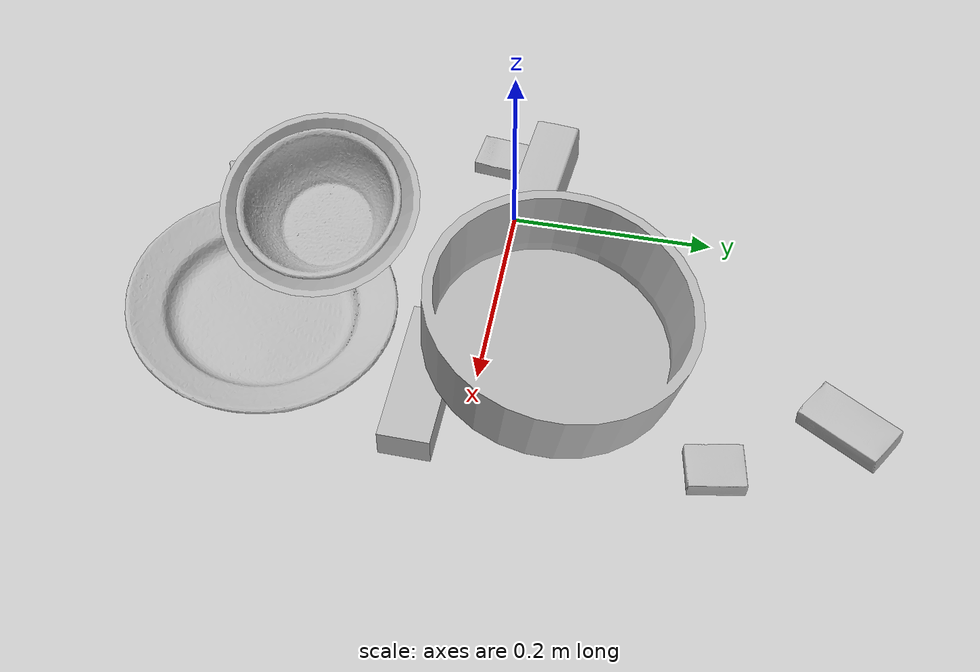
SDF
<sdf version="1.4">
  <world name="default">
    <light name="light1" type="point">
      <pose>0 0 1 0 0 0</pose>
      <diffuse>3 3 3 1</diffuse>
      <specular>3 3 3 1</specular>
    </light>
    <light name="light2" type="point">
      <pose>0 0.5 2 0 0 0</pose>
      <diffuse>1 1 1 1</diffuse>
      <specular>1 1 1 1</specular>
    </light>
    <light name="light3" type="point">
      <pose>0 0.5 2 0 0 0</pose>
      <diffuse>3 3 3 1</diffuse>
      <specular>3 3 3 1</specular>
    </light>
    <scene>
      <ambient>0.7 0.7 0.7</ambient>
    </scene>
    <model name="box1">
      <link name="link_box1">
        <collision name="default">
          <geometry>
            <mesh>
              <uri>model://jenga/collision_meshes/collision.obj</uri>
              <scale>1.0 1.0 1.0</scale>
            </mesh>
          </geometry>
          <surface>
            <friction>
              <ode>
                <mu>0.5</mu>
                <mu2>0.5</mu2>
              </ode>
            </friction>
          <contact>
        <ode>
            <max_vel>0</max_vel>
            <min_depth>0.0001</min_depth>
            <kp>1e8</kp>
        </ode>
    </contact></surface>
        </collision>
        <visual name="default">
          <geometry>
            <mesh>
              <uri>model://jenga/visual_meshes/visual.dae</uri>
              <scale>1.0 1.0 1.0</scale>
            </mesh>
          </geometry>
        </visual>
        <inertial>
          <mass>0.22956150770187378</mass>
          <pose>-2.502855807051674e-07 -0.00010250010382151231 -4.0923401684267446e-05 0.0 -7.34215461761844e-07 0.0</pose>
          <inertia>
            <ixx>6.3525236e-05</ixx>
            <iyy>0.00043044525</iyy>
            <izz>0.0004595369</izz>
            <ixy>0</ixy>
            <ixz>0</ixz>
            <iyz>0</iyz>
          </inertia>
        </inertial>
      </link>
      <pose>0.22569029033184052 -0.04743558168411255 0.014999778009951115 -2.5305509260337143e-05 1.2501530752671049e-05 3.1207744515261817</pose>
    </model>
    <model name="box11">
      <link name="link_box11">
        <collision name="default">
          <geometry>
            <mesh>
              <uri>model://gelatin_box/collision_meshes/collision.obj</uri>
              <scale>1.0 1.0 1.0</scale>
            </mesh>
          </geometry>
          <surface>
            <friction>
              <ode>
                <mu>0.5</mu>
                <mu2>0.5</mu2>
              </ode>
            </friction>
          <contact>
        <ode>
            <max_vel>0</max_vel>
            <min_depth>0.0001</min_depth>
            <kp>1e8</kp>
        </ode>
    </contact></surface>
        </collision>
        <visual name="default">
          <geometry>
            <mesh>
              <uri>model://gelatin_box/visual_meshes/visual.dae</uri>
              <scale>1.0 1.0 1.0</scale>
            </mesh>
          </geometry>
        </visual>
        <inertial>
          <mass>0.23979201912879944</mass>
          <pose>0.00043196187471039593 0.00011156872642459348 -0.0003640321083366871 -0.0010503717361155602 -0.00475581776093882 0.016440559470502904</pose>
          <inertia>
            <ixx>0.00016927361</ixx>
            <iyy>0.000120911245</iyy>
            <izz>0.00025767216</izz>
            <ixy>0</ixy>
            <ixz>0</ixz>
            <iyz>0</iyz>
          </inertia>
        </inertial>
      </link>
      <pose>0.021354271098971367 -0.24590064585208893 0.015432355925440788 -0.006845118190067414 0.013100636155772897 0.2786583625307552</pose>
    </model>
    <model name="box2">
      <link name="link_box2">
        <collision name="default">
          <geometry>
            <mesh>
              <uri>model://wood_block/collision_meshes/collision.obj</uri>
              <scale>0.5 0.5 0.5</scale>
            </mesh>
          </geometry>
          <surface>
            <friction>
              <ode>
                <mu>0.5</mu>
                <mu2>0.5</mu2>
              </ode>
            </friction>
          <contact>
        <ode>
            <max_vel>0</max_vel>
            <min_depth>0.0001</min_depth>
            <kp>1e8</kp>
        </ode>
    </contact></surface>
        </collision>
        <visual name="default">
          <geometry>
            <mesh>
              <uri>model://wood_block/visual_meshes/visual.dae</uri>
              <scale>0.5 0.5 0.5</scale>
            </mesh>
          </geometry>
        </visual>
        <inertial>
          <mass>0.1620619148015976</mass>
          <pose>-2.9066577553749084e-06 -0.000285404734313488 0.00013204291462898254 -0.05221116986778199 -0.0051926948812571205 -0.006861377876233232</pose>
          <inertia>
            <ixx>5.421584e-05</ixx>
            <iyy>0.00017126785</iyy>
            <izz>0.00017062723</izz>
            <ixy>0</ixy>
            <ixz>0</ixz>
            <iyz>0</iyz>
          </inertia>
        </inertial>
      </link>
      <pose>-0.046628188341856 0.023641396313905716 0.0226292721927166 -0.005208453628440705 0.005718779025222092 3.0517597531839247</pose>
    </model>
    <model name="box21">
      <link name="link_box21">
        <collision name="default">
          <geometry>
            <mesh>
              <uri>model://cracker_box/collision_meshes/collision.obj</uri>
              <scale>0.25 0.25 0.25</scale>
            </mesh>
          </geometry>
          <surface>
            <friction>
              <ode>
                <mu>0.5</mu>
                <mu2>0.5</mu2>
              </ode>
            </friction>
          <contact>
        <ode>
            <max_vel>0</max_vel>
            <min_depth>0.0001</min_depth>
            <kp>1e8</kp>
        </ode>
    </contact></surface>
        </collision>
        <visual name="default">
          <geometry>
            <mesh>
              <uri>model://cracker_box/visual_meshes/visual.dae</uri>
              <scale>0.25 0.25 0.25</scale>
            </mesh>
          </geometry>
        </visual>
        <inertial>
          <mass>0.053346797823905945</mass>
          <pose>0.0002366035187151283 6.358561950037256e-05 -0.00042573839891701937 -0.0003162075101960104 -0.011106487737771283 0.002546795233856971</pose>
          <inertia>
            <ixx>8.4806525e-06</ixx>
            <iyy>1.40032225e-05</iyy>
            <izz>1.9983887e-05</izz>
            <ixy>0</ixy>
            <ixz>0</ixz>
            <iyz>0</iyz>
          </inertia>
        </inertial>
      </link>
      <pose>-0.07256141304969788 -0.02346501685678959 0.009096027351915836 -0.014050988415739051 -0.005016062097905104 1.4430437398028497</pose>
    </model>
    <model name="box3">
      <link name="link_box3">
        <collision name="default">
          <geometry>
            <mesh>
              <uri>model://pudding_box/collision_meshes/collision.obj</uri>
              <scale>0.5 0.5 0.5</scale>
            </mesh>
          </geometry>
          <surface>
            <friction>
              <ode>
                <mu>0.5</mu>
                <mu2>0.5</mu2>
              </ode>
            </friction>
          <contact>
        <ode>
            <max_vel>0</max_vel>
            <min_depth>0.0001</min_depth>
            <kp>1e8</kp>
        </ode>
    </contact></surface>
        </collision>
        <visual name="default">
          <geometry>
            <mesh>
              <uri>model://pudding_box/visual_meshes/visual.dae</uri>
              <scale>0.5 0.5 0.5</scale>
            </mesh>
          </geometry>
        </visual>
        <inertial>
          <mass>0.03981568291783333</mass>
          <pose>0.00024474109522998333 0.00040339428232982755 -0.00025944141088984907 0.005213101343760943 -0.0066037982384193495 0.020079821436446477</pose>
          <inertia>
            <ixx>1.1252395e-05</ixx>
            <iyy>7.5706907e-06</iyy>
            <izz>1.6617103e-05</izz>
            <ixy>0</ixy>
            <ixz>0</ixz>
            <iyz>0</iyz>
          </inertia>
        </inertial>
      </link>
      <pose>0.26872098445892334 0.23364029824733734 0.009862903505563736 0.022348571350496206 -0.011391656211314646 -2.942079755309743</pose>
    </model>
    <model name="box31">
      <link name="link_box31">
        <collision name="default">
          <geometry>
            <mesh>
              <uri>model://sugar_box/collision_meshes/collision.obj</uri>
              <scale>0.5 0.5 0.5</scale>
            </mesh>
          </geometry>
          <surface>
            <friction>
              <ode>
                <mu>0.5</mu>
                <mu2>0.5</mu2>
              </ode>
            </friction>
          <contact>
        <ode>
            <max_vel>0</max_vel>
            <min_depth>0.0001</min_depth>
            <kp>1e8</kp>
        </ode>
    </contact></surface>
        </collision>
        <visual name="default">
          <geometry>
            <mesh>
              <uri>model://sugar_box/visual_meshes/visual.dae</uri>
              <scale>0.5 0.5 0.5</scale>
            </mesh>
          </geometry>
        </visual>
        <inertial>
          <mass>0.09878891706466675</mass>
          <pose>0.0005171863595023751 1.924554817378521e-05 -0.00018182402709499002 -0.0004046259508743568 0.001050663638168667 0.0026153790219137513</pose>
          <inertia>
            <ixx>2.0577656e-05</ixx>
            <iyy>6.651122e-05</iyy>
            <izz>7.9621874e-05</izz>
            <ixy>0</ixy>
            <ixz>0</ixz>
            <iyz>0</iyz>
          </inertia>
        </inertial>
      </link>
      <pose>0.19974662363529205 0.35006746649742126 0.011399304494261742 0.0007752918099122593 -0.023433221063925223 1.022078804877161</pose>
    </model>
    <model name="plate1">
      <link name="link_plate1">
        <collision name="default">
          <geometry>
            <mesh>
              <uri>model://pan_tefal/collision_meshes/collision.obj</uri>
              <scale>1.0 1.0 1.0</scale>
            </mesh>
          </geometry>
          <surface>
            <friction>
              <ode>
                <mu>0.5</mu>
                <mu2>0.5</mu2>
              </ode>
            </friction>
          <contact>
        <ode>
            <max_vel>0</max_vel>
            <min_depth>0.0001</min_depth>
            <kp>1e8</kp>
        </ode>
    </contact></surface>
        </collision>
        <visual name="default">
          <geometry>
            <mesh>
              <uri>model://pan_tefal/visual_meshes/visual.dae</uri>
              <scale>1.0 1.0 1.0</scale>
            </mesh>
          </geometry>
        </visual>
        <inertial>
          <mass>1.1273940801620483</mass>
          <pose>-0.00018001534044742584 3.279306838521734e-05 -0.00851493701338768 0.0008190361817388816 -0.00033014848142065665 -0.3318599615030245</pose>
          <inertia>
            <ixx>0.007782347</ixx>
            <iyy>0.00783252</iyy>
            <izz>0.014325799</izz>
            <ixy>0</ixy>
            <ixz>0</ixz>
            <iyz>0</iyz>
          </inertia>
        </inertial>
      </link>
      <pose>0.16658629477024078 0.07063443213701248 0.05483993515372276 0.14620951145897104 1.681988722302556e-05 3.10933725976693</pose>
    </model>
    <model name="bowl1">
      <link name="link_bowl1">
        <collision name="default">
          <geometry>
            <mesh>
              <uri>model://bowl_a/collision_meshes/collision.obj</uri>
              <scale>1.0 1.0 1.0</scale>
            </mesh>
          </geometry>
          <surface>
            <friction>
              <ode>
                <mu>0.5</mu>
                <mu2>0.5</mu2>
              </ode>
            </friction>
          <contact>
        <ode>
            <max_vel>0</max_vel>
            <min_depth>0.0001</min_depth>
            <kp>1e8</kp>
        </ode>
    </contact></surface>
        </collision>
        <visual name="default">
          <geometry>
            <mesh>
              <uri>model://bowl_a/visual_meshes/visual.dae</uri>
              <scale>1.0 1.0 1.0</scale>
            </mesh>
          </geometry>
        </visual>
        <inertial>
          <mass>0.3873887062072754</mass>
          <pose>0.00027867493918165565 4.731054286821745e-05 -0.0013765293406322598 -0.0009805472575270138 -0.0010938146264646796 -0.19122952428204854</pose>
          <inertia>
            <ixx>0.0011029133</ixx>
            <iyy>0.0011096848</iyy>
            <izz>0.001961574</izz>
            <ixy>0</ixy>
            <ixz>0</ixz>
            <iyz>0</iyz>
          </inertia>
        </inertial>
      </link>
      <pose>0.07904928922653198 -0.17465467751026154 0.05898274853825569 -0.13834777189792083 -0.25261713444219097 -2.7673513729787422</pose>
    </model>
    <model name="plate2">
      <link name="link_plate2">
        <collision name="default">
          <geometry>
            <mesh>
              <uri>model://plate/collision_meshes/collision.obj</uri>
              <scale>1.0 1.0 1.0</scale>
            </mesh>
          </geometry>
          <surface>
            <friction>
              <ode>
                <mu>0.5</mu>
                <mu2>0.5</mu2>
              </ode>
            </friction>
          <contact>
        <ode>
            <max_vel>0</max_vel>
            <min_depth>0.0001</min_depth>
            <kp>1e8</kp>
        </ode>
    </contact></surface>
        </collision>
        <visual name="default">
          <geometry>
            <mesh>
              <uri>model://plate/visual_meshes/visual.dae</uri>
              <scale>1.0 1.0 1.0</scale>
            </mesh>
          </geometry>
        </visual>
        <inertial>
          <mass>0.13866961002349854</mass>
          <pose>-0.0006044620531611145 0.0002782586379908025 -0.0010561972158029675 0.0022187857877866432 -0.0032254843385796767 0.452609315183835</pose>
          <inertia>
            <ixx>0.0006486992</ixx>
            <iyy>0.0006424946</iyy>
            <izz>0.0012687586</izz>
            <ixy>0</ixy>
            <ixz>0</ixz>
            <iyz>0</iyz>
          </inertia>
        </inertial>
      </link>
      <pose>0.16929708421230316 -0.21696795523166656 0.019456183537840843 -0.054699178941312356 0.048906565237479105 0.5379033280587457</pose>
    </model>
    <model name="bowl2">
      <link name="link_bowl2">
        <collision name="default">
          <geometry>
            <mesh>
              <uri>model://bowl/collision_meshes/collision.obj</uri>
              <scale>1.0 1.0 1.0</scale>
            </mesh>
          </geometry>
          <surface>
            <friction>
              <ode>
                <mu>0.5</mu>
                <mu2>0.5</mu2>
              </ode>
            </friction>
          <contact>
        <ode>
            <max_vel>0</max_vel>
            <min_depth>0.0001</min_depth>
            <kp>1e8</kp>
        </ode>
    </contact></surface>
        </collision>
        <visual name="default">
          <geometry>
            <mesh>
              <uri>model://bowl/visual_meshes/visual.dae</uri>
              <scale>1.0 1.0 1.0</scale>
            </mesh>
          </geometry>
        </visual>
        <inertial>
          <mass>0.04854629561305046</mass>
          <pose>0.00020445325935725123 -0.0010302069131284952 -0.0008042645058594644 -0.015764106240563104 0.014546770392749554 0.7140394241749954</pose>
          <inertia>
            <ixx>0.00011151466</ixx>
            <iyy>0.00010902299</iyy>
            <izz>0.00018760598</izz>
            <ixy>0</ixy>
            <ixz>0</ixz>
            <iyz>0</iyz>
          </inertia>
        </inertial>
      </link>
      <pose>0.08242745697498322 -0.17518408596515656 0.06698542833328247 0.2874126794488784 -0.007855960165687747 1.4670790163255296</pose>
    </model>
  <physics type="ode">
      <max_contacts>50</max_contacts>
      <ode>
        <solver>
          <type>quick</type>
          <iters>75</iters>
        </solver>
        <constraints>
          <contact_max_correcting_vel>0</contact_max_correcting_vel>
          <contact_surface_layer>0</contact_surface_layer>
        </constraints>
      </ode>
    </physics></world>
</sdf>
